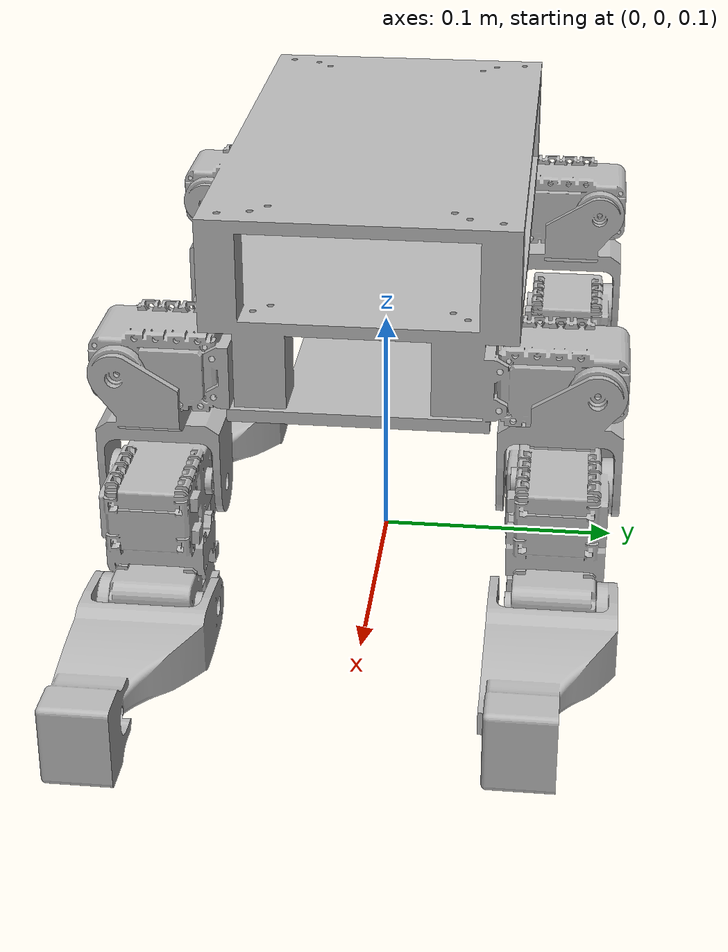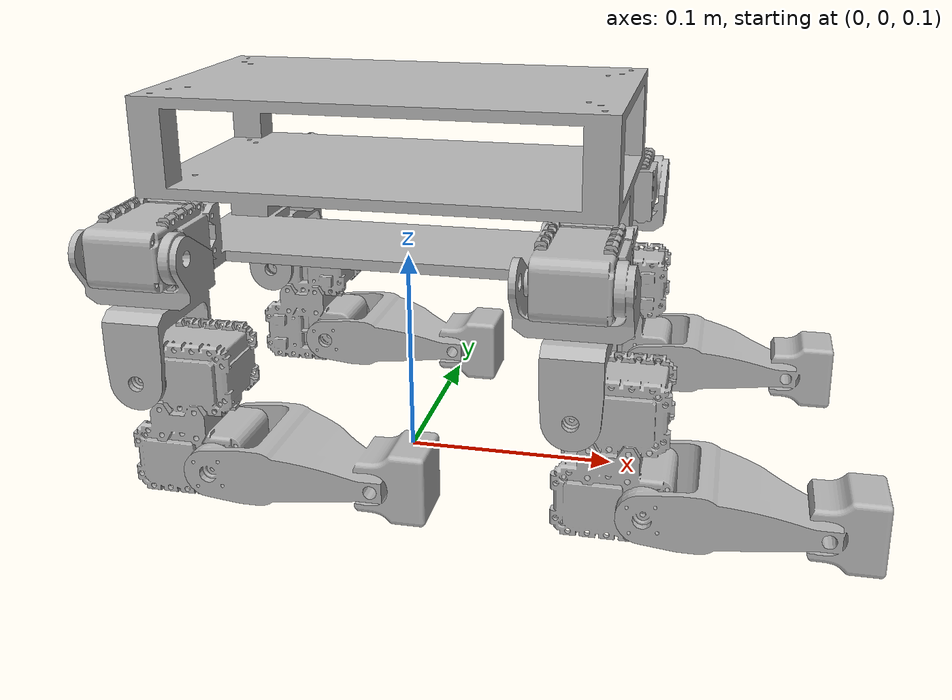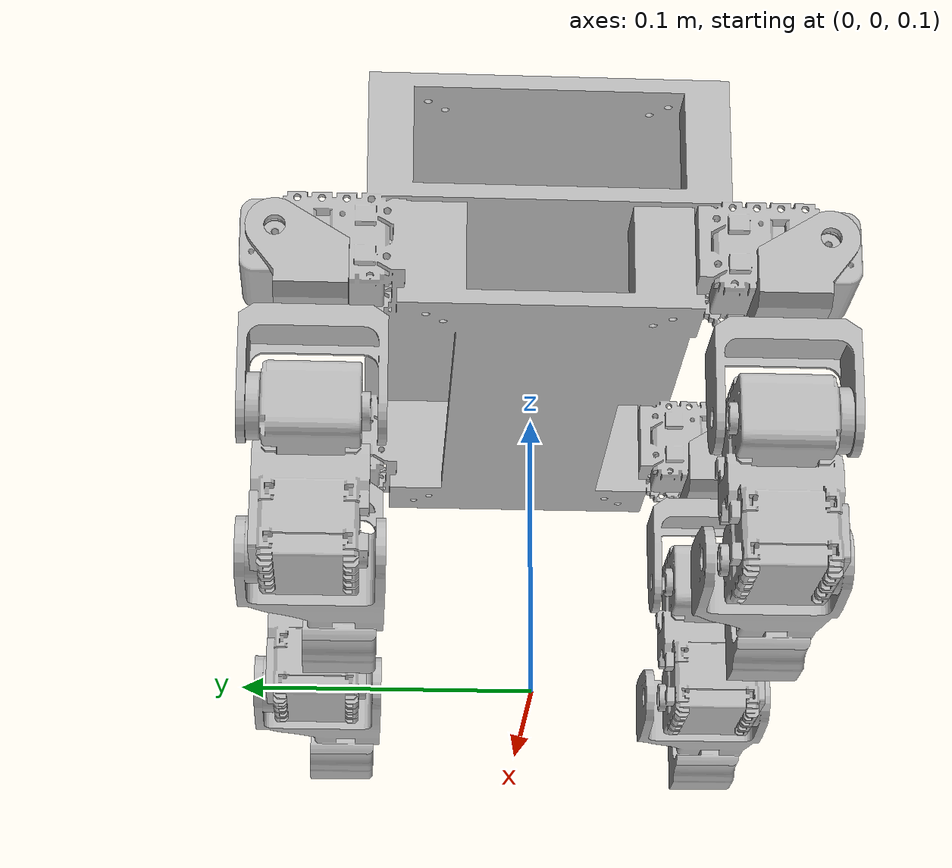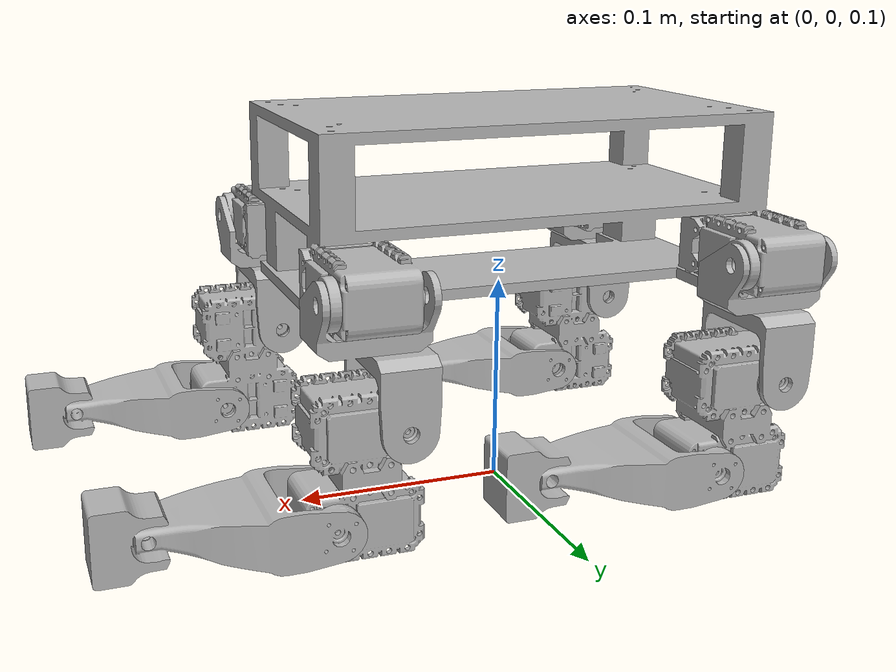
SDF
<sdf version='1.7'>
  <model name='clifford'>
    <link name='base_footprint'>
      <inertial>
        <pose>0.000111 -0.000219 0.239574 0 -0 0</pose>
        <mass>0.67215</mass>
        <inertia>
          <ixx>0.00045592</ixx>
          <ixy>-1.3217e-15</ixy>
          <ixz>-5.901e-15</ixz>
          <iyy>0.0015305</iyy>
          <iyz>-3.9529e-11</iyz>
          <izz>0.0019462</izz>
        </inertia>
      </inertial>
      <collision name='base_footprint_fixed_joint_lump__base_link_collision'>
        <pose>0 0 0.2425 0 -0 0</pose>
        <geometry>
          <mesh>
            <scale>1 1 1</scale>
            <uri>model://clifford_urdf/meshes/base_link.STL</uri>
          </mesh>
        </geometry>
      </collision>
      <visual name='base_footprint_fixed_joint_lump__base_link_visual'>
        <pose>0 0 0.2425 0 -0 0</pose>
        <geometry>
          <mesh>
            <scale>1 1 1</scale>
            <uri>model://clifford_urdf/meshes/base_link.STL</uri>
          </mesh>
        </geometry>
      </visual>
    </link>
    <joint name='hombro_1_joint' type='revolute'>
      <pose relative_to='base_footprint'>-0.0925 -0.090321 0.2225 3.14159 1.57079 3.14159</pose>
      <parent>base_footprint</parent>
      <child>hombro_1_link</child>
      <axis>
        <xyz>0 0 1</xyz>
        <limit>
          <lower>-1.57</lower>
          <upper>1.57</upper>
          <effort>1</effort>
          <velocity>1</velocity>
        </limit>
        <dynamics>
          <spring_reference>0</spring_reference>
          <spring_stiffness>0</spring_stiffness>
        </dynamics>
      </axis>
    </joint>
    <link name='hombro_1_link'>
      <pose relative_to='hombro_1_joint'>0 0 0 0 -0 0</pose>
      <inertial>
        <pose>0.023513 0.010937 0.001882 0 -0 0</pose>
        <mass>0.026193</mass>
        <inertia>
          <ixx>9.4188e-06</ixx>
          <ixy>-2.9548e-07</ixy>
          <ixz>-1.387e-15</ixz>
          <iyy>7.078e-06</iyy>
          <iyz>3.2313e-14</iyz>
          <izz>7.8863e-06</izz>
        </inertia>
      </inertial>
      <collision name='hombro_1_link_collision'>
        <pose>0 0 0 0 -0 0</pose>
        <geometry>
          <mesh>
            <scale>1 1 1</scale>
            <uri>model://clifford_urdf/meshes/hombro_1_link.STL</uri>
          </mesh>
        </geometry>
      </collision>
      <visual name='hombro_1_link_visual'>
        <pose>0 0 0 0 -0 0</pose>
        <geometry>
          <mesh>
            <scale>1 1 1</scale>
            <uri>model://clifford_urdf/meshes/hombro_1_link.STL</uri>
          </mesh>
        </geometry>
      </visual>
    </link>
    <joint name='codo_1_joint' type='revolute'>
      <pose relative_to='hombro_1_link'>0.0535 0.01292 0.001389 1.5708 -0 0</pose>
      <parent>hombro_1_link</parent>
      <child>codo_1_link</child>
      <axis>
        <xyz>0 0 1</xyz>
        <limit>
          <lower>-1.57</lower>
          <upper>1.57</upper>
          <effort>1</effort>
          <velocity>1</velocity>
        </limit>
        <dynamics>
          <spring_reference>0</spring_reference>
          <spring_stiffness>0</spring_stiffness>
        </dynamics>
      </axis>
    </joint>
    <link name='codo_1_link'>
      <pose relative_to='codo_1_joint'>0 0 0 0 -0 0</pose>
      <inertial>
        <pose>0.019153 0.014488 0.000728 0 -0 0</pose>
        <mass>0.094179</mass>
        <inertia>
          <ixx>1.9321e-05</ixx>
          <ixy>1.9765e-11</ixy>
          <ixz>7.2156e-17</ixz>
          <iyy>8.49e-06</iyy>
          <iyz>2.8789e-15</iyz>
          <izz>2.0432e-05</izz>
        </inertia>
      </inertial>
      <collision name='codo_1_link_collision'>
        <pose>0 0 0 0 -0 0</pose>
        <geometry>
          <mesh>
            <scale>1 1 1</scale>
            <uri>model://clifford_urdf/meshes/codo_1_link.STL</uri>
          </mesh>
        </geometry>
      </collision>
      <visual name='codo_1_link_visual'>
        <pose>0 0 0 0 -0 0</pose>
        <geometry>
          <mesh>
            <scale>1 1 1</scale>
            <uri>model://clifford_urdf/meshes/codo_1_link.STL</uri>
          </mesh>
        </geometry>
      </visual>
    </link>
    <joint name='muneca_1_joint' type='revolute'>
      <pose relative_to='codo_1_link'>0.039 0.0295 0 0 -0 1.5708</pose>
      <parent>codo_1_link</parent>
      <child>muneca_1_link</child>
      <axis>
        <xyz>0 0 1</xyz>
        <limit>
          <lower>-1.57</lower>
          <upper>1.57</upper>
          <effort>1</effort>
          <velocity>1</velocity>
        </limit>
        <dynamics>
          <spring_reference>0</spring_reference>
          <spring_stiffness>0</spring_stiffness>
        </dynamics>
      </axis>
    </joint>
    <link name='muneca_1_link'>
      <pose relative_to='muneca_1_joint'>0 0 0 0 -0 0</pose>
      <inertial>
        <pose>0.04965 -0.000355 0.005031 0 -0 0</pose>
        <mass>0.072202</mass>
        <inertia>
          <ixx>1.4705e-05</ixx>
          <ixy>1.1128e-07</ixy>
          <ixz>-2.5527e-06</ixz>
          <iyy>2.6079e-05</iyy>
          <iyz>2.973e-08</iyz>
          <izz>1.815e-05</izz>
        </inertia>
      </inertial>
      <collision name='muneca_1_link_collision'>
        <pose>0 0 0 0 -0 0</pose>
        <geometry>
          <mesh>
            <scale>1 1 1</scale>
            <uri>model://clifford_urdf/meshes/muneca_1_link.STL</uri>
          </mesh>
        </geometry>
      </collision>
      <visual name='muneca_1_link_visual'>
        <pose>0 0 0 0 -0 0</pose>
        <geometry>
          <mesh>
            <scale>1 1 1</scale>
            <uri>model://clifford_urdf/meshes/muneca_1_link.STL</uri>
          </mesh>
        </geometry>
      </visual>
    </link>
    <joint name='hombro_2_joint' type='revolute'>
      <pose relative_to='base_footprint'>0.0925 -0.090321 0.2225 -3.07137 1.57079 3.14159</pose>
      <parent>base_footprint</parent>
      <child>hombro_2_link</child>
      <axis>
        <xyz>0 0 1</xyz>
        <limit>
          <lower>-1.57</lower>
          <upper>1.57</upper>
          <effort>1</effort>
          <velocity>1</velocity>
        </limit>
        <dynamics>
          <spring_reference>0</spring_reference>
          <spring_stiffness>0</spring_stiffness>
        </dynamics>
      </axis>
    </joint>
    <link name='hombro_2_link'>
      <pose relative_to='hombro_2_joint'>0 0 0 0 -0 0</pose>
      <inertial>
        <pose>0.023513 0.011042 0.001109 0 -0 0</pose>
        <mass>0.026193</mass>
        <inertia>
          <ixx>9.4188e-06</ixx>
          <ixy>-2.9475e-07</ixy>
          <ixz>2.0733e-08</ixz>
          <iyy>7.082e-06</iyy>
          <iyz>5.6575e-08</iyz>
          <izz>7.8823e-06</izz>
        </inertia>
      </inertial>
      <collision name='hombro_2_link_collision'>
        <pose>0 0 0 0 -0 0</pose>
        <geometry>
          <mesh>
            <scale>1 1 1</scale>
            <uri>model://clifford_urdf/meshes/hombro_2_link.STL</uri>
          </mesh>
        </geometry>
      </collision>
      <visual name='hombro_2_link_visual'>
        <pose>0 0 0 0 -0 0</pose>
        <geometry>
          <mesh>
            <scale>1 1 1</scale>
            <uri>model://clifford_urdf/meshes/hombro_2_link.STL</uri>
          </mesh>
        </geometry>
      </visual>
    </link>
    <joint name='codo_2_joint' type='revolute'>
      <pose relative_to='hombro_2_link'>0.0535 0.012985 0.000479 1.5006 -0 0</pose>
      <parent>hombro_2_link</parent>
      <child>codo_2_link</child>
      <axis>
        <xyz>0 0 1</xyz>
        <limit>
          <lower>-1.57</lower>
          <upper>1.57</upper>
          <effort>1</effort>
          <velocity>1</velocity>
        </limit>
        <dynamics>
          <spring_reference>0</spring_reference>
          <spring_stiffness>0</spring_stiffness>
        </dynamics>
      </axis>
    </joint>
    <link name='codo_2_link'>
      <pose relative_to='codo_2_joint'>0 0 0 0 -0 0</pose>
      <inertial>
        <pose>0.019153 0.014488 0.000728 0 -0 0</pose>
        <mass>0.094179</mass>
        <inertia>
          <ixx>1.9321e-05</ixx>
          <ixy>1.9765e-11</ixy>
          <ixz>7.2154e-17</ixz>
          <iyy>8.49e-06</iyy>
          <iyz>2.8789e-15</iyz>
          <izz>2.0432e-05</izz>
        </inertia>
      </inertial>
      <collision name='codo_2_link_collision'>
        <pose>0 0 0 0 -0 0</pose>
        <geometry>
          <mesh>
            <scale>1 1 1</scale>
            <uri>model://clifford_urdf/meshes/codo_2_link.STL</uri>
          </mesh>
        </geometry>
      </collision>
      <visual name='codo_2_link_visual'>
        <pose>0 0 0 0 -0 0</pose>
        <geometry>
          <mesh>
            <scale>1 1 1</scale>
            <uri>model://clifford_urdf/meshes/codo_2_link.STL</uri>
          </mesh>
        </geometry>
      </visual>
    </link>
    <joint name='muneca_2_joint' type='revolute'>
      <pose relative_to='codo_2_link'>0.039 0.0295 0 0 -0 1.5708</pose>
      <parent>codo_2_link</parent>
      <child>muneca_2_link</child>
      <axis>
        <xyz>0 0 1</xyz>
        <limit>
          <lower>-1.57</lower>
          <upper>1.57</upper>
          <effort>1</effort>
          <velocity>1</velocity>
        </limit>
        <dynamics>
          <spring_reference>0</spring_reference>
          <spring_stiffness>0</spring_stiffness>
        </dynamics>
      </axis>
    </joint>
    <link name='muneca_2_link'>
      <pose relative_to='muneca_2_joint'>0 0 0 0 -0 0</pose>
      <inertial>
        <pose>0.04965 -0.000355 0.005031 0 -0 0</pose>
        <mass>0.072202</mass>
        <inertia>
          <ixx>1.4705e-05</ixx>
          <ixy>1.1128e-07</ixy>
          <ixz>-2.5527e-06</ixz>
          <iyy>2.6079e-05</iyy>
          <iyz>2.973e-08</iyz>
          <izz>1.815e-05</izz>
        </inertia>
      </inertial>
      <collision name='muneca_2_link_collision'>
        <pose>0 0 0 0 -0 0</pose>
        <geometry>
          <mesh>
            <scale>1 1 1</scale>
            <uri>model://clifford_urdf/meshes/muneca_2_link.STL</uri>
          </mesh>
        </geometry>
      </collision>
      <visual name='muneca_2_link_visual'>
        <pose>0 0 0 0 -0 0</pose>
        <geometry>
          <mesh>
            <scale>1 1 1</scale>
            <uri>model://clifford_urdf/meshes/muneca_2_link.STL</uri>
          </mesh>
        </geometry>
      </visual>
    </link>
    <joint name='hombro_3_joint' type='revolute'>
      <pose relative_to='base_footprint'>0.0925 0.089179 0.2225 3.14159 1.57079 3.14159</pose>
      <parent>base_footprint</parent>
      <child>hombro_3_link</child>
      <axis>
        <xyz>0 0 1</xyz>
        <limit>
          <lower>-1.57</lower>
          <upper>1.57</upper>
          <effort>1</effort>
          <velocity>1</velocity>
        </limit>
        <dynamics>
          <spring_reference>0</spring_reference>
          <spring_stiffness>0</spring_stiffness>
        </dynamics>
      </axis>
    </joint>
    <link name='hombro_3_link'>
      <pose relative_to='hombro_3_joint'>0 0 0 0 -0 0</pose>
      <inertial>
        <pose>0.023513 -0.010937 -0.004361 0 -0 0</pose>
        <mass>0.026193</mass>
        <inertia>
          <ixx>9.4188e-06</ixx>
          <ixy>2.9548e-07</ixy>
          <ixz>-5.7849e-15</ixz>
          <iyy>7.078e-06</iyy>
          <iyz>4.0305e-14</iyz>
          <izz>7.8863e-06</izz>
        </inertia>
      </inertial>
      <collision name='hombro_3_link_collision'>
        <pose>0 0 0 0 -0 0</pose>
        <geometry>
          <mesh>
            <scale>1 1 1</scale>
            <uri>model://clifford_urdf/meshes/hombro_3_link.STL</uri>
          </mesh>
        </geometry>
      </collision>
      <visual name='hombro_3_link_visual'>
        <pose>0 0 0 0 -0 0</pose>
        <geometry>
          <mesh>
            <scale>1 1 1</scale>
            <uri>model://clifford_urdf/meshes/hombro_3_link.STL</uri>
          </mesh>
        </geometry>
      </visual>
    </link>
    <joint name='codo_3_joint' type='revolute'>
      <pose relative_to='hombro_3_link'>0.0535 -0.01182 -0.011111 -1.5708 0 0</pose>
      <parent>hombro_3_link</parent>
      <child>codo_3_link</child>
      <axis>
        <xyz>0 0 1</xyz>
        <limit>
          <lower>-1.57</lower>
          <upper>1.57</upper>
          <effort>1</effort>
          <velocity>1</velocity>
        </limit>
        <dynamics>
          <spring_reference>0</spring_reference>
          <spring_stiffness>0</spring_stiffness>
        </dynamics>
      </axis>
    </joint>
    <link name='codo_3_link'>
      <pose relative_to='codo_3_joint'>0 0 0 0 -0 0</pose>
      <inertial>
        <pose>0.019153 -0.014488 -0.000372 0 -0 0</pose>
        <mass>0.094179</mass>
        <inertia>
          <ixx>1.9321e-05</ixx>
          <ixy>1.9765e-11</ixy>
          <ixz>-1.4981e-16</ixz>
          <iyy>8.49e-06</iyy>
          <iyz>2.8729e-15</iyz>
          <izz>2.0432e-05</izz>
        </inertia>
      </inertial>
      <collision name='codo_3_link_collision'>
        <pose>0 0 0 0 -0 0</pose>
        <geometry>
          <mesh>
            <scale>1 1 1</scale>
            <uri>model://clifford_urdf/meshes/codo_3_link.STL</uri>
          </mesh>
        </geometry>
      </collision>
      <visual name='codo_3_link_visual'>
        <pose>0 0 0 0 -0 0</pose>
        <geometry>
          <mesh>
            <scale>1 1 1</scale>
            <uri>model://clifford_urdf/meshes/codo_3_link.STL</uri>
          </mesh>
        </geometry>
      </visual>
    </link>
    <joint name='muneca_3_joint' type='revolute'>
      <pose relative_to='codo_3_link'>0.039 -0.0295 0 0 0 -1.5708</pose>
      <parent>codo_3_link</parent>
      <child>muneca_3_link</child>
      <axis>
        <xyz>0 0 1</xyz>
        <limit>
          <lower>-1.57</lower>
          <upper>1.57</upper>
          <effort>1</effort>
          <velocity>1</velocity>
        </limit>
        <dynamics>
          <spring_reference>0</spring_reference>
          <spring_stiffness>0</spring_stiffness>
        </dynamics>
      </axis>
    </joint>
    <link name='muneca_3_link'>
      <pose relative_to='muneca_3_joint'>0 0 0 0 -0 0</pose>
      <inertial>
        <pose>0.04965 0.000355 -0.005562 0 -0 0</pose>
        <mass>0.072202</mass>
        <inertia>
          <ixx>1.4705e-05</ixx>
          <ixy>-1.1128e-07</ixy>
          <ixz>2.5527e-06</ixz>
          <iyy>2.6079e-05</iyy>
          <iyz>2.973e-08</iyz>
          <izz>1.815e-05</izz>
        </inertia>
      </inertial>
      <collision name='muneca_3_link_collision'>
        <pose>0 0 0 0 -0 0</pose>
        <geometry>
          <mesh>
            <scale>1 1 1</scale>
            <uri>model://clifford_urdf/meshes/muneca_3_link.STL</uri>
          </mesh>
        </geometry>
      </collision>
      <visual name='muneca_3_link_visual'>
        <pose>0 0 0 0 -0 0</pose>
        <geometry>
          <mesh>
            <scale>1 1 1</scale>
            <uri>model://clifford_urdf/meshes/muneca_3_link.STL</uri>
          </mesh>
        </geometry>
      </visual>
    </link>
    <joint name='hombro_4_joint' type='revolute'>
      <pose relative_to='base_footprint'>-0.0925 0.089179 0.2225 3.14159 1.57079 3.14159</pose>
      <parent>base_footprint</parent>
      <child>hombro_4_link</child>
      <axis>
        <xyz>0 0 1</xyz>
        <limit>
          <lower>-1.57</lower>
          <upper>1.57</upper>
          <effort>1</effort>
          <velocity>1</velocity>
        </limit>
        <dynamics>
          <spring_reference>0</spring_reference>
          <spring_stiffness>0</spring_stiffness>
        </dynamics>
      </axis>
    </joint>
    <link name='hombro_4_link'>
      <pose relative_to='hombro_4_joint'>0 0 0 0 -0 0</pose>
      <inertial>
        <pose>0.023513 -0.010937 0.000494 0 -0 0</pose>
        <mass>0.026193</mass>
        <inertia>
          <ixx>9.4188e-06</ixx>
          <ixy>2.9548e-07</ixy>
          <ixz>-5.7849e-15</ixz>
          <iyy>7.078e-06</iyy>
          <iyz>4.0305e-14</iyz>
          <izz>7.8863e-06</izz>
        </inertia>
      </inertial>
      <collision name='hombro_4_link_collision'>
        <pose>0 0 0 0 -0 0</pose>
        <geometry>
          <mesh>
            <scale>1 1 1</scale>
            <uri>model://clifford_urdf/meshes/hombro_4_link.STL</uri>
          </mesh>
        </geometry>
      </collision>
      <visual name='hombro_4_link_visual'>
        <pose>0 0 0 0 -0 0</pose>
        <geometry>
          <mesh>
            <scale>1 1 1</scale>
            <uri>model://clifford_urdf/meshes/hombro_4_link.STL</uri>
          </mesh>
        </geometry>
      </visual>
    </link>
    <joint name='codo_4_joint' type='revolute'>
      <pose relative_to='hombro_4_link'>0.0535 -0.01182 -0.001389 -1.5708 0 0</pose>
      <parent>hombro_4_link</parent>
      <child>codo_4_link</child>
      <axis>
        <xyz>0 0 1</xyz>
        <limit>
          <lower>-1.57</lower>
          <upper>1.57</upper>
          <effort>1</effort>
          <velocity>1</velocity>
        </limit>
        <dynamics>
          <spring_reference>0</spring_reference>
          <spring_stiffness>0</spring_stiffness>
        </dynamics>
      </axis>
    </joint>
    <link name='codo_4_link'>
      <pose relative_to='codo_4_joint'>0 0 0 0 -0 0</pose>
      <inertial>
        <pose>0.019153 -0.014488 -0.000372 0 -0 0</pose>
        <mass>0.094179</mass>
        <inertia>
          <ixx>1.9321e-05</ixx>
          <ixy>1.9765e-11</ixy>
          <ixz>-1.4982e-16</ixz>
          <iyy>8.49e-06</iyy>
          <iyz>2.8728e-15</iyz>
          <izz>2.0432e-05</izz>
        </inertia>
      </inertial>
      <collision name='codo_4_link_collision'>
        <pose>0 0 0 0 -0 0</pose>
        <geometry>
          <mesh>
            <scale>1 1 1</scale>
            <uri>model://clifford_urdf/meshes/codo_4_link.STL</uri>
          </mesh>
        </geometry>
      </collision>
      <visual name='codo_4_link_visual'>
        <pose>0 0 0 0 -0 0</pose>
        <geometry>
          <mesh>
            <scale>1 1 1</scale>
            <uri>model://clifford_urdf/meshes/codo_4_link.STL</uri>
          </mesh>
        </geometry>
      </visual>
    </link>
    <joint name='muneca_4_joint' type='revolute'>
      <pose relative_to='codo_4_link'>0.039 -0.0295 0 0 0 -1.5708</pose>
      <parent>codo_4_link</parent>
      <child>muneca_4_link</child>
      <axis>
        <xyz>0 0 1</xyz>
        <limit>
          <lower>-1.57</lower>
          <upper>1.57</upper>
          <effort>1</effort>
          <velocity>1</velocity>
        </limit>
        <dynamics>
          <spring_reference>0</spring_reference>
          <spring_stiffness>0</spring_stiffness>
        </dynamics>
      </axis>
    </joint>
    <link name='muneca_4_link'>
      <pose relative_to='muneca_4_joint'>0 0 0 0 -0 0</pose>
      <inertial>
        <pose>0.04965 0.000355 -0.005562 0 -0 0</pose>
        <mass>0.072202</mass>
        <inertia>
          <ixx>1.4705e-05</ixx>
          <ixy>-1.1128e-07</ixy>
          <ixz>2.5527e-06</ixz>
          <iyy>2.6079e-05</iyy>
          <iyz>2.973e-08</iyz>
          <izz>1.815e-05</izz>
        </inertia>
      </inertial>
      <collision name='muneca_4_link_collision'>
        <pose>0 0 0 0 -0 0</pose>
        <geometry>
          <mesh>
            <scale>1 1 1</scale>
            <uri>model://clifford_urdf/meshes/muneca_4_link.STL</uri>
          </mesh>
        </geometry>
      </collision>
      <visual name='muneca_4_link_visual'>
        <pose>0 0 0 0 -0 0</pose>
        <geometry>
          <mesh>
            <scale>1 1 1</scale>
            <uri>model://clifford_urdf/meshes/muneca_4_link.STL</uri>
          </mesh>
        </geometry>
      </visual>
    </link>
  </model>
</sdf>
